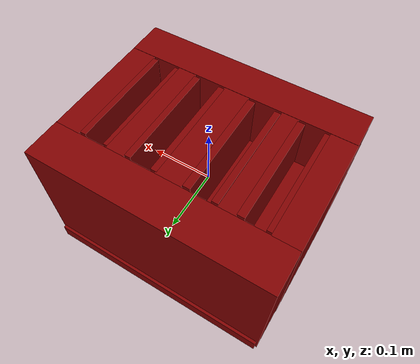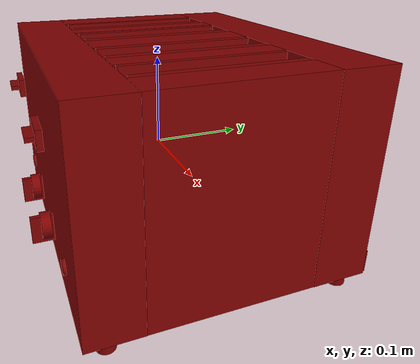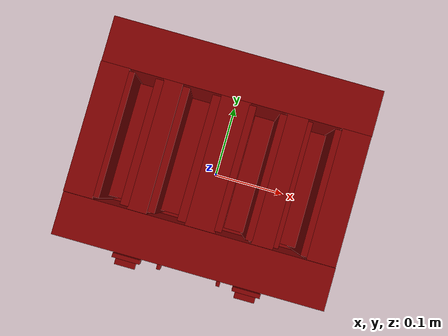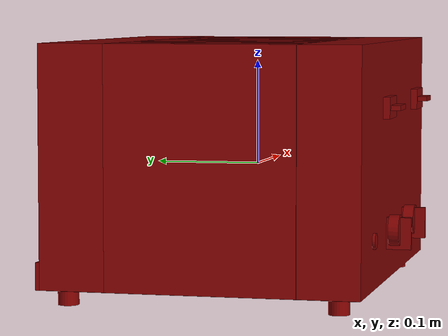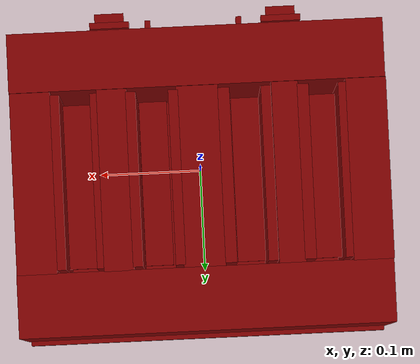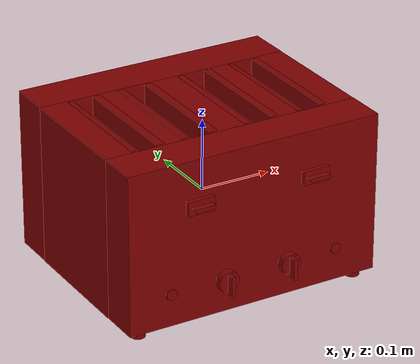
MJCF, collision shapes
<?xml version='1.0' encoding='UTF-8'?>
<mujoco model="model">
  <option timestep="0.002" gravity="0.0 0.0 -9.81"/>
  <compiler angle="radian"/>
  <asset>
    <mesh file="visuals/sideL_button_cancel.obj" name="sideL_button_cancel_vis"/>
    <mesh file="visuals/sideL_knob_doneness.obj" name="sideL_knob_doneness_vis"/>
    <mesh file="visuals/sideL_lever.obj" name="sideL_lever_vis"/>
    <mesh file="visuals/sideR_button_cancel.obj" name="sideR_button_cancel_vis"/>
    <mesh file="visuals/sideR_knob_doneness.obj" name="sideR_knob_doneness_vis"/>
    <mesh file="visuals/sideR_lever.obj" name="sideR_lever_vis"/>
    <mesh file="visuals/Body001.obj" name="Body001_vis"/>
    <mesh file="visuals/Body002.obj" name="Body002_vis"/>
    <texture file="visuals/T_BC001.png" name="Body001_material" type="2d"/>
    <material name="Body001_material" rgba="1 1 1 1.0" texture="Body001_material" shininess="0.5" specular="0.6"/>
    <texture file="visuals/T_BC001.png" name="sideL_button_cancel_material" type="2d"/>
    <material name="sideL_button_cancel_material" rgba="1 1 1 1.0" texture="sideL_button_cancel_material" shininess="0.5" specular="0.8"/>
    <texture file="visuals/T_BC001.png" name="sideL_knob_doneness_material" type="2d"/>
    <material name="sideL_knob_doneness_material" rgba="1 1 1 1.0" texture="sideL_knob_doneness_material" shininess="0.5" specular="0.8"/>
    <texture file="visuals/T_BC001.png" name="sideL_lever_material" type="2d"/>
    <material name="sideL_lever_material" rgba="1 1 1 1.0" texture="sideL_lever_material" shininess="0.5" specular="0.8"/>
    <texture file="visuals/T_BC001.png" name="sideR_button_cancel_material" type="2d"/>
    <material name="sideR_button_cancel_material" rgba="1 1 1 1.0" texture="sideR_button_cancel_material" shininess="0.5" specular="0.8"/>
    <texture file="visuals/T_BC001.png" name="sideR_knob_doneness_material" type="2d"/>
    <material name="sideR_knob_doneness_material" rgba="1 1 1 1.0" texture="sideR_knob_doneness_material" shininess="0.5" specular="0.8"/>
    <texture file="visuals/T_BC001.png" name="sideR_lever_material" type="2d"/>
    <material name="sideR_lever_material" rgba="1 1 1 1.0" texture="sideR_lever_material" shininess="0.5" specular="0.8"/>
    <texture file="visuals/T_BC001.png" name="Body002_material" type="2d"/>
    <material name="Body002_material" rgba="1 1 1 1.0" texture="Body002_material" shininess="0.5" specular="3"/>
  </asset>
  <default>
    <default class="visual">
      <geom conaffinity="0" contype="0" group="1" type="mesh"/>
    </default>
    <default class="collision_1">
      <geom group="0" rgba="0.5 0 0 0.5" solref="0.004 1" solimp="0.998 0.998 0.001"/>
    </default>
    <default class="collision_2">
      <geom group="0" rgba="0.5 0 0 0.5" solref="0.004 1" solimp="0.998 0.998 0.001"/>
    </default>
    <default class="collision_3">
      <geom group="0" rgba="0.5 0 0 0.5" solref="0.004 1" solimp="0.998 0.998 0.001"/>
    </default>
    <default class="collision_4">
      <geom group="0" rgba="0.5 0 0 0.5" solref="0.004 1" solimp="0.998 0.998 0.001"/>
    </default>
    <default class="collision_5">
      <geom group="0" rgba="0.5 0 0 0.5" solref="0.004 1" solimp="0.998 0.998 0.001"/>
    </default>
    <default class="collision_6">
      <geom group="0" rgba="0.5 0 0 0.5" solref="0.004 1" solimp="0.998 0.998 0.001"/>
    </default>
    <default class="collision_7">
      <geom group="0" rgba="0.5 0 0 0.5" solref="0.004 1" solimp="0.998 0.998 0.001"/>
    </default>
    <default class="collision_8">
      <geom group="0" rgba="0.5 0 0 0.5" solref="0.004 1" solimp="0.998 0.998 0.001"/>
    </default>
    <default class="spawn">
      <geom group="0" rgba="1 1 1 0.5" contype="0" conaffinity="0"/>
      <site group="0" rgba="1 1 1 0.5"/>
    </default>
    <default class="region">
      <geom group="1" conaffinity="0" contype="0" rgba="0 1 0 0" mass="0"/>
    </default>
  </default>
  <worldbody>
    <body>
      <body name="object">
        <geom mesh="Body001_vis" type="mesh" solimp="0.998 0.998 0.001" solref="0.001 1" friction="0.95 0.3 0.1" class="visual" material="Body001_material"/>
        <geom type="box" pos="0.0 0.1307358741760254 0.007763848640024662" size="0.18278317153453827 0.030968448147177696 0.11197870224714279" quat="1.0 0.0 0.0 0.0" class="collision_1"/>
        <geom type="box" pos="0.0 -0.10518806427717209 0.007763848640024662" size="0.18278315663337708 0.028775308281183243 0.11197870224714279" quat="1.0 0.0 0.0 0.0" class="collision_1"/>
        <geom type="box" pos="0.162806898355484 0.012079990468919277 0.007763849571347237" size="0.01963685266673565 0.08824531733989716 0.11198690533638" quat="1.0 0.0 0.0 0.0" class="collision_1"/>
        <geom type="box" pos="-0.16372668743133545 0.012079990468919277 0.007763851433992386" size="0.01963685266673565 0.08824531733989716 0.11198662966489792" quat="1.0 0.0 0.0 0.0" class="collision_1"/>
        <geom type="box" pos="-0.08492938429117203 0.012079990468919277 0.007763849571347237" size="0.013056380674242973 0.08824266493320465 0.11197104305028915" quat="1.0 0.0 0.0 0.0" class="collision_1"/>
        <geom type="box" pos="0.0003066202625632286 0.012079990468919277 0.007763851433992386" size="0.02036367356777191 0.08824531733989716 0.11197501420974731" quat="1.0 0.0 0.0 0.0" class="collision_1"/>
        <geom type="box" pos="0.08334530889987946 0.012079990468919277 0.007763848640024662" size="0.014646485447883606 0.08824531733989716 0.11197870224714279" quat="1.0 0.0 0.0 0.0" class="collision_1"/>
        <geom type="cylinder" pos="-0.15894222259521484 -0.11052775382995605 -0.11220764368772507" size="0.009821919724345207 0.007714869454503059" quat="1.0 0.0 0.0 0.0" class="collision_1"/>
        <geom type="cylinder" pos="-0.15894222259521484 0.14165472984313965 -0.11220764368772507" size="0.009821919724345207 0.007714869454503059" quat="1.0 0.0 0.0 0.0" class="collision_1"/>
        <geom type="cylinder" pos="0.16593624651432037 -0.11052775382995605 -0.11220764368772507" size="0.009821919724345207 0.007714869454503059" quat="1.0 0.0 0.0 0.0" class="collision_1"/>
        <geom type="cylinder" pos="0.16593624651432037 0.14165472984313965 -0.11220764368772507" size="0.009821919724345207 0.007714869454503059" quat="1.0 0.0 0.0 0.0" class="collision_1"/>
        <geom type="box" pos="-0.0664513036608696 0.012079990468919277 0.007763851433992386" size="0.004780661314725876 0.0850042849779129 0.11198554188013077" quat="1.0 0.0 0.0 0.0" class="collision_1"/>
        <geom type="box" pos="-0.02547631412744522 0.012079990468919277 0.007763849571347237" size="0.005699888337403536 0.08500410616397858 0.11198526620864868" quat="1.0 0.0 0.0 0.0" class="collision_1"/>
        <geom type="box" pos="0.02359612286090851 0.012079990468919277 0.007763851433992386" size="0.004780661314725876 0.08500391989946365 0.1119849905371666" quat="1.0 0.0 0.0 0.0" class="collision_1"/>
        <geom type="box" pos="0.06495026499032974 0.012079990468919277 0.007763849571347237" size="0.004849208518862724 0.08500374108552933 0.11198471486568451" quat="1.0 0.0 0.0 0.0" class="collision_1"/>
        <geom type="box" pos="0.10086341202259064 0.012079990468919277 0.007763849571347237" size="0.00365849444642663 0.08499972522258759 0.11197584122419357" quat="1.0 0.0 0.0 0.0" class="collision_1"/>
        <geom type="box" pos="0.14052079617977142 0.012079990468919277 0.007763849571347237" size="0.006151702255010605 0.08500337600708008 0.11198417097330093" quat="1.0 0.0 0.0 0.0" class="collision_1"/>
        <geom type="box" pos="-0.14139775931835175 0.012079990468919277 0.007763851433992386" size="0.004780661314725876 0.08500318974256516 0.11198389530181885" quat="1.0 0.0 0.0 0.0" class="collision_1"/>
        <geom type="box" pos="-0.10245190560817719 0.012079990468919277 0.007763848640024662" size="0.00560641149058938 0.08500301092863083 0.11197870224714279" quat="1.0 0.0 0.0 0.0" class="collision_1"/>
        <geom type="box" pos="0.0 0.017169732600450516 -0.09214702248573303" size="0.1800077259540558 0.14913173019886017 0.012762213125824928" quat="1.0 0.0 0.0 0.0" class="collision_1"/>
        <body name="sideL_button_cancel">
          <joint axis="0.0 1.0 0.0" pos="-0.12382468581199646 -0.13341757655143738 -0.05799706652760506" limited="true" name="sideL_button_cancel_joint" range="0.0 0.003" type="slide" damping="1" frictionloss="1" armature=".01" stiffness="0.05"/>
          <geom mesh="sideL_button_cancel_vis" type="mesh" solimp="0.998 0.998 0.001" solref="0.001 1" friction="0.95 0.3 0.1" class="visual" material="sideL_button_cancel_material"/>
          <geom class="collision_2" type="cylinder" pos="-0.12393656373023987 -0.13629214465618134 -0.05785689502954483" size="0.007437814027070999 0.0013412082334980369" quat="0.7071068286895752 0.7071067690849304 0.0 0.0" name="sideL_button_cancel_main"/>
        </body>
        <body name="sideL_knob_doneness">
          <joint axis="0.0 1.0 0.0" pos="-0.0457763709127903 -0.14416104555130005 -0.05669567361474037" limited="true" name="sideL_knob_doneness_joint" range="0.0 5.235987755982989" type="hinge" damping="0.05" frictionloss="0.1" armature="0.001"/>
          <geom mesh="sideL_knob_doneness_vis" type="mesh" solimp="0.998 0.998 0.001" solref="0.001 1" friction="0.95 0.3 0.1" class="visual" material="sideL_knob_doneness_material"/>
          <geom type="cylinder" pos="-0.045753952115774155 -0.14257530868053436 -0.05660383403301239" size="0.014604751951992512 0.0049477447755634785" quat="0.7071068286895752 0.7071067690849304 0.0 0.0" class="collision_3" density="0.001"/>
          <geom class="collision_3" type="box" pos="-0.045708123594522476 -0.14622710645198822 -0.05956811457872391" size="0.0027107419446110725 0.011635971255600452 0.015003010630607605" quat="1.0 0.0 0.0 0.0" name="sideL_knob_doneness_main" density="0.001"/>
        </body>
        <body name="sideL_lever">
          <joint axis="0.0 0.0 -1.0" pos="-0.08562967926263809 -0.12279382348060608 0.06072010099887848" limited="true" name="sideL_lever_joint" range="0.0 0.06" type="slide" damping="1" frictionloss="1" armature=".01" stiffness="3" springref="-0.5"/>
          <geom class="region" name="reg_sideL_slotL" type="box" pos="-0.12213747575879097 0.012564100325107574 0.12046733684837818" size="0.014860519975423814 0.07920514589548111 0.07600007562339306"/>
          <geom class="region" name="reg_sideL_slotR" type="box" pos="-0.04648022539913654 0.012564100325107574 0.12046733684837818" size="0.014927871361374856 0.07920514589548111 0.07600007562339306"/>
          <geom mesh="sideL_lever_vis" type="mesh" solimp="0.998 0.998 0.001" solref="0.001 1" friction="0.95 0.3 0.1" class="visual" material="sideL_lever_material"/>
          <geom class="collision_4" type="box" pos="-0.08537087589502335 -0.1507624089717865 0.06096380203962326" size="0.01433886680752039 0.004464126192033291 0.0023683267645537853" quat="1.0 0.0 0.0 0.0" name="sideL_lever_handle"/>
          <geom type="box" pos="-0.08537087589502335 -0.14317749440670013 0.06096380203962326" size="0.019358130171895027 0.003041111631318927 0.009927273727953434" quat="1.0 0.0 0.0 0.0" class="collision_4"/>
          <geom class="collision_4" type="box" pos="-0.12215737253427505 0.013026301749050617 0.039405837655067444" size="0.013749999925494194 0.08113616704940796 0.001352261402644217" quat="1.0 0.0 0.0 0.0" name="sideL_slotL_floor"/>
          <geom class="collision_4" type="box" pos="-0.046521954238414764 0.013026301749050617 0.039405837655067444" size="0.013749999925494194 0.08113612234592438 0.0013522593071684241" quat="1.0 0.0 0.0 0.0" name="sideL_slotR_floor"/>
        </body>
        <body name="sideR_button_cancel">
          <joint axis="0.0 1.0 0.0" pos="0.12132418155670166 -0.13341757655143738 -0.05799706652760506" limited="true" name="sideR_button_cancel_joint" range="0.0 0.003" type="slide" damping="1" frictionloss="1" armature=".01" stiffness="0.05"/>
          <geom mesh="sideR_button_cancel_vis" type="mesh" solimp="0.998 0.998 0.001" solref="0.001 1" friction="0.95 0.3 0.1" class="visual" material="sideR_button_cancel_material"/>
          <geom class="collision_5" type="cylinder" pos="0.12145990878343582 -0.13603216409683228 -0.05785689502954483" size="0.007437814027070999 0.0013412082334980369" quat="0.7071068286895752 0.7071067690849304 0.0 0.0" name="sideR_button_cancel_main"/>
        </body>
        <body name="sideR_knob_doneness">
          <joint axis="0.0 1.0 0.0" pos="0.04678315296769142 -0.14416104555130005 -0.05626770108938217" limited="true" name="sideR_knob_doneness_joint" range="0.0 5.235987755982989" type="hinge" damping="0.05" frictionloss="0.1" armature="0.001"/>
          <geom mesh="sideR_knob_doneness_vis" type="mesh" solimp="0.998 0.998 0.001" solref="0.001 1" friction="0.95 0.3 0.1" class="visual" material="sideR_knob_doneness_material"/>
          <geom type="cylinder" pos="0.046773139387369156 -0.1424776166677475 -0.056292127817869186" size="0.014244599267840385 0.005085412412881851" quat="0.7071068286895752 0.7071067690849304 0.0 0.0" class="collision_6" density="0.001"/>
          <geom class="collision_6" type="box" pos="0.04683396592736244 -0.14622710645198822 -0.05956811457872391" size="0.0027107419446110725 0.011635971255600452 0.015003010630607605" quat="1.0 0.0 0.0 0.0" name="sideR_knob_doneness_main" density="0.001"/>
        </body>
        <body name="sideR_lever">
          <joint axis="0.0 0.0 -1.0" pos="0.08349090814590454 -0.12279382348060608 0.06072010099887848" limited="true" name="sideR_lever_joint" range="0.0 0.06" type="slide" damping="1" frictionloss="1" armature=".01" stiffness="3" springref="-0.5"/>
          <geom class="region" name="reg_sideR_slotL" type="box" pos="0.044490463100373745 0.012564100325107574 0.12046733684837818" size="0.014943967409431935 0.07920514589548111 0.07600007562339306"/>
          <geom class="region" name="reg_sideR_slotR" type="box" pos="0.1198720932006836 0.012564100325107574 0.12046733684837818" size="0.014918712735176087 0.07920514589548111 0.07600007562339306"/>
          <geom mesh="sideR_lever_vis" type="mesh" solimp="0.998 0.998 0.001" solref="0.001 1" friction="0.95 0.3 0.1" class="visual" material="sideR_lever_material"/>
          <geom type="box" pos="0.0834248885512352 -0.14317749440670013 0.06096380203962326" size="0.019358130171895027 0.003041111631318927 0.00992730911821127" quat="1.0 0.0 0.0 0.0" class="collision_7"/>
          <geom class="collision_7" type="box" pos="0.0834248885512352 -0.1507624089717865 0.06096380203962326" size="0.014338712207973003 0.004464126192033291 0.0023683267645537853" quat="1.0 0.0 0.0 0.0" name="sideR_lever_handle"/>
          <geom class="collision_7" type="box" pos="0.04452598839998245 0.013026301749050617 0.039405837655067444" size="0.013749999925494194 0.08113597333431244 0.0013522531371563673" quat="1.0 0.0 0.0 0.0" name="sideR_slotL_floor"/>
          <geom class="collision_7" type="box" pos="0.11979889869689941 0.013026301749050617 0.039405837655067444" size="0.013749999925494194 0.08113592863082886 0.0013522510416805744" quat="1.0 0.0 0.0 0.0" name="sideR_slotR_floor"/>
        </body>
        <body name="Body002">
          <geom mesh="Body002_vis" type="mesh" solimp="0.998 0.998 0.001" solref="0.001 1" friction="0.95 0.3 0.1" class="visual" material="Body002_material"/>
        </body>
        <geom class="region" name="reg_main" type="box" pos="3.725290298461914e-09 0.011982321739196777 0.0" size="0.18304496800899506 0.14696709609031677 0.12031507289409638"/>
      </body>
    </body>
  </worldbody>
  <actuator>
    <motor name="sideL_button_cancel_joint_actuator" joint="sideL_button_cancel_joint" gear="0.5"/>
    <motor name="sideL_knob_doneness_joint_actuator" joint="sideL_knob_doneness_joint" gear="10"/>
    <motor name="sideL_lever_joint_actuator" joint="sideL_lever_joint" gear="2"/>
    <motor name="sideR_button_cancel_joint_actuator" joint="sideR_button_cancel_joint" gear="0.5"/>
    <motor name="sideR_knob_doneness_joint_actuator" joint="sideR_knob_doneness_joint" gear="10"/>
    <motor name="sideR_lever_joint_actuator" joint="sideR_lever_joint" gear="2"/>
  </actuator>
</mujoco>
